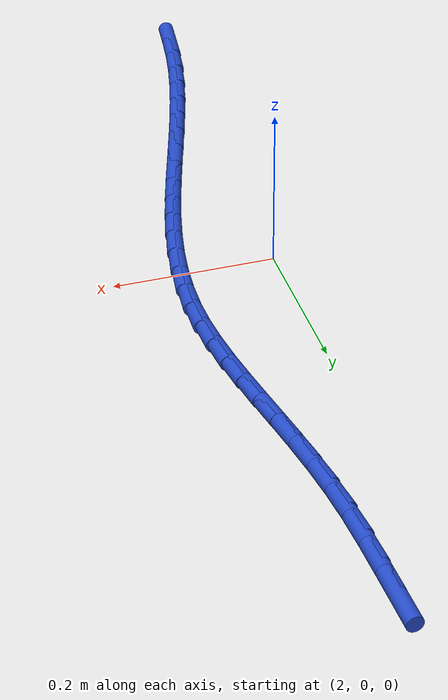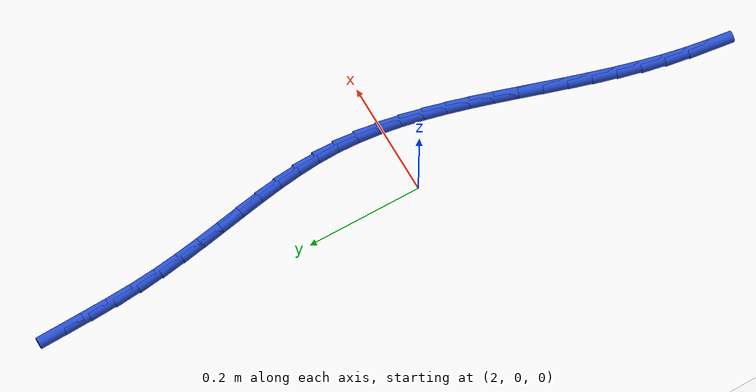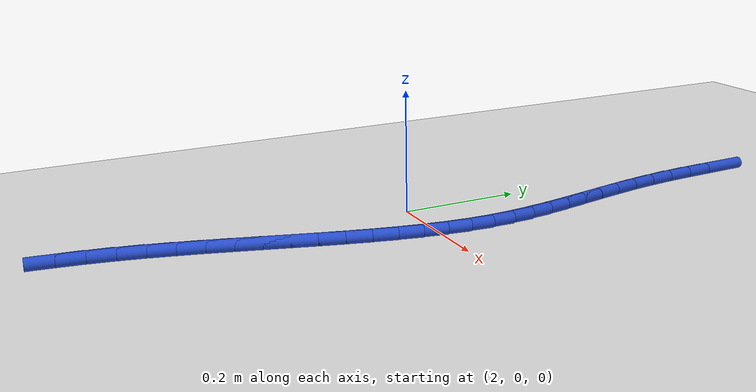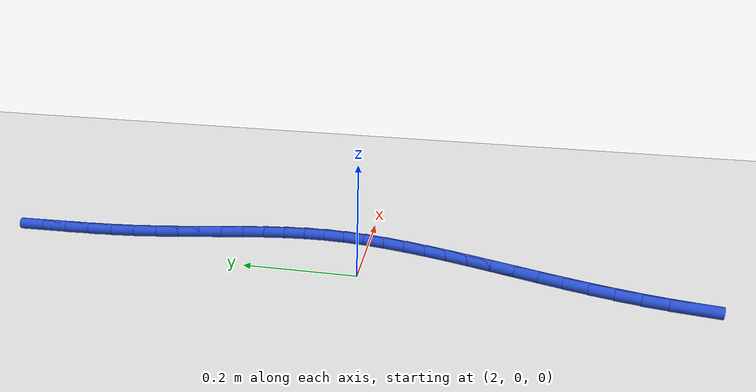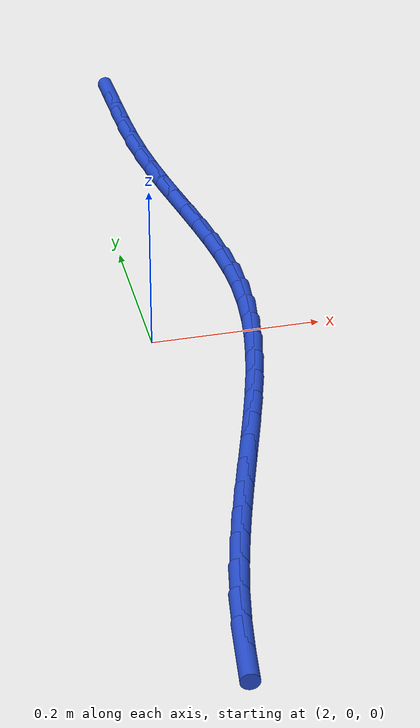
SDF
<sdf version="1.6">
 <world name="default">
  <model name="ground_plane">
   <static>1</static>
   <link name="link">
    <collision name="collision">
     <geometry><plane><normal>0 0 1</normal><size>100 100</size></plane></geometry>
     <surface><friction><ode><mu>100</mu><mu2>50</mu2></ode></friction></surface>
    </collision>
    <visual name="visual">
     <cast_shadows>0</cast_shadows>
     <geometry><plane><normal>0 0 1</normal><size>100 100</size></plane></geometry>
     <material>
      <script><uri>file://media/materials/scripts/gazebo.material</uri><name>Gazebo/WhiteGlow</name></script>
     </material>
    </visual>
   </link>
  </model>
  <model name="line">
   <link name="link_75">
    <pose>2.0658196708728847 0.612621576964853 0.01 0 1.57 -1.5425370507481455</pose>
    <collision name="collision">
     <geometry><cylinder><radius>0.01</radius><length>0.08</length></cylinder></geometry>
    </collision>
    <visual name="visual">
     <material>
      <script><name>Gazebo/Blue</name><uri>file://media/materials/scripts/gazebo.material</uri></script>
     </material>
     <geometry><cylinder><radius>0.01</radius><length>0.08</length></cylinder></geometry>
    </visual>
   </link>
   <link name="link_76">
    <pose>2.0670937337694575 0.5675488112464088 0.01 0 1.57 -1.5370149648665443</pose>
    <collision name="collision">
     <geometry><cylinder><radius>0.01</radius><length>0.08</length></cylinder></geometry>
    </collision>
    <visual name="visual">
     <material>
      <script><name>Gazebo/Blue</name><uri>file://media/materials/scripts/gazebo.material</uri></script>
     </material>
     <geometry><cylinder><radius>0.01</radius><length>0.08</length></cylinder></geometry>
    </visual>
   </link>
   <link name="link_77">
    <pose>2.068618910010215 0.5224175334499878 0.01 0 1.57 -1.516168102248437</pose>
    <collision name="collision">
     <geometry><cylinder><radius>0.01</radius><length>0.08</length></cylinder></geometry>
    </collision>
    <visual name="visual">
     <material>
      <script><name>Gazebo/Blue</name><uri>file://media/materials/scripts/gazebo.material</uri></script>
     </material>
     <geometry><cylinder><radius>0.01</radius><length>0.08</length></cylinder></geometry>
    </visual>
   </link>
   <link name="link_78">
    <pose>2.0710577040891653 0.47781847075410205 0.01 0 1.57 -1.479744158521406</pose>
    <collision name="collision">
     <geometry><cylinder><radius>0.01</radius><length>0.08</length></cylinder></geometry>
    </collision>
    <visual name="visual">
     <material>
      <script><name>Gazebo/Blue</name><uri>file://media/materials/scripts/gazebo.material</uri></script>
     </material>
     <geometry><cylinder><radius>0.01</radius><length>0.08</length></cylinder></geometry>
    </visual>
   </link>
   <link name="link_79">
    <pose>2.07502982569719 0.4343144152568177 0.01 0 1.57 -1.4411196240991653</pose>
    <collision name="collision">
     <geometry><cylinder><radius>0.01</radius><length>0.08</length></cylinder></geometry>
    </collision>
    <visual name="visual">
     <material>
      <script><name>Gazebo/Blue</name><uri>file://media/materials/scripts/gazebo.material</uri></script>
     </material>
     <geometry><cylinder><radius>0.01</radius><length>0.08</length></cylinder></geometry>
    </visual>
   </link>
   <link name="link_80">
    <pose>2.080539341135744 0.39206628671765337 0.01 0 1.57 -1.4119477316533582</pose>
    <collision name="collision">
     <geometry><cylinder><radius>0.01</radius><length>0.08</length></cylinder></geometry>
    </collision>
    <visual name="visual">
     <material>
      <script><name>Gazebo/Blue</name><uri>file://media/materials/scripts/gazebo.material</uri></script>
     </material>
     <geometry><cylinder><radius>0.01</radius><length>0.08</length></cylinder></geometry>
    </visual>
   </link>
   <link name="link_81">
    <pose>2.087128713516291 0.35093368507912615 0.01 0 1.57 -1.3934064803781783</pose>
    <collision name="collision">
     <geometry><cylinder><radius>0.01</radius><length>0.08</length></cylinder></geometry>
    </collision>
    <visual name="visual">
     <material>
      <script><name>Gazebo/Blue</name><uri>file://media/materials/scripts/gazebo.material</uri></script>
     </material>
     <geometry><cylinder><radius>0.01</radius><length>0.08</length></cylinder></geometry>
    </visual>
   </link>
   <link name="link_82">
    <pose>2.0943292222444954 0.31076890991785544 0.01 0 1.57 -1.3862881607513446</pose>
    <collision name="collision">
     <geometry><cylinder><radius>0.01</radius><length>0.08</length></cylinder></geometry>
    </collision>
    <visual name="visual">
     <material>
      <script><name>Gazebo/Blue</name><uri>file://media/materials/scripts/gazebo.material</uri></script>
     </material>
     <geometry><cylinder><radius>0.01</radius><length>0.08</length></cylinder></geometry>
    </visual>
   </link>
   <link name="link_83">
    <pose>2.101672146726018 0.27142426081046084 0.01 0 1.57 -1.391310648379787</pose>
    <collision name="collision">
     <geometry><cylinder><radius>0.01</radius><length>0.08</length></cylinder></geometry>
    </collision>
    <visual name="visual">
     <material>
      <script><name>Gazebo/Blue</name><uri>file://media/materials/scripts/gazebo.material</uri></script>
     </material>
     <geometry><cylinder><radius>0.01</radius><length>0.08</length></cylinder></geometry>
    </visual>
   </link>
   <link name="link_84">
    <pose>2.1086887663665226 0.23275203733356306 0.01 0 1.57 -1.4091266235786877</pose>
    <collision name="collision">
     <geometry><cylinder><radius>0.01</radius><length>0.08</length></cylinder></geometry>
    </collision>
    <visual name="visual">
     <material>
      <script><name>Gazebo/Blue</name><uri>file://media/materials/scripts/gazebo.material</uri></script>
     </material>
     <geometry><cylinder><radius>0.01</radius><length>0.08</length></cylinder></geometry>
    </visual>
   </link>
   <link name="link_85">
    <pose>2.1149103605716713 0.19460453906378122 0.01 0 1.57 -1.4402799689647814</pose>
    <collision name="collision">
     <geometry><cylinder><radius>0.01</radius><length>0.08</length></cylinder></geometry>
    </collision>
    <visual name="visual">
     <material>
      <script><name>Gazebo/Blue</name><uri>file://media/materials/scripts/gazebo.material</uri></script>
     </material>
     <geometry><cylinder><radius>0.01</radius><length>0.08</length></cylinder></geometry>
    </visual>
   </link>
   <link name="link_86">
    <pose>2.119868208747126 0.15683406557773585 0.01 0 1.57 -1.4850908943707237</pose>
    <collision name="collision">
     <geometry><cylinder><radius>0.01</radius><length>0.08</length></cylinder></geometry>
    </collision>
    <visual name="visual">
     <material>
      <script><name>Gazebo/Blue</name><uri>file://media/materials/scripts/gazebo.material</uri></script>
     </material>
     <geometry><cylinder><radius>0.01</radius><length>0.08</length></cylinder></geometry>
    </visual>
   </link>
   <link name="link_87">
    <pose>2.1230935902985504 0.11929291645204661 0.01 0 1.57 -1.543461777566761</pose>
    <collision name="collision">
     <geometry><cylinder><radius>0.01</radius><length>0.08</length></cylinder></geometry>
    </collision>
    <visual name="visual">
     <material>
      <script><name>Gazebo/Blue</name><uri>file://media/materials/scripts/gazebo.material</uri></script>
     </material>
     <geometry><cylinder><radius>0.01</radius><length>0.08</length></cylinder></geometry>
    </visual>
   </link>
   <link name="link_88">
    <pose>2.124117784631606 0.08183339126333301 0.01 0 1.57 1.5301817495891665</pose>
    <collision name="collision">
     <geometry><cylinder><radius>0.01</radius><length>0.08</length></cylinder></geometry>
    </collision>
    <visual name="visual">
     <material>
      <script><name>Gazebo/Blue</name><uri>file://media/materials/scripts/gazebo.material</uri></script>
     </material>
     <geometry><cylinder><radius>0.01</radius><length>0.08</length></cylinder></geometry>
    </visual>
   </link>
   <link name="link_89">
    <pose>2.122593690683846 0.044328240639109305 0.01 0 1.57 1.467159769155734</pose>
    <collision name="collision">
     <geometry><cylinder><radius>0.01</radius><length>0.08</length></cylinder></geometry>
    </collision>
    <visual name="visual">
     <material>
      <script><name>Gazebo/Blue</name><uri>file://media/materials/scripts/gazebo.material</uri></script>
     </material>
     <geometry><cylinder><radius>0.01</radius><length>0.08</length></cylinder></geometry>
    </visual>
   </link>
   <link name="link_90">
    <pose>2.1186837411773807 0.006735896356931243 0.01 0 1.57 1.4129645011971836</pose>
    <collision name="collision">
     <geometry><cylinder><radius>0.01</radius><length>0.08</length></cylinder></geometry>
    </collision>
    <visual name="visual">
     <material>
      <script><name>Gazebo/Blue</name><uri>file://media/materials/scripts/gazebo.material</uri></script>
     </material>
     <geometry><cylinder><radius>0.01</radius><length>0.08</length></cylinder></geometry>
    </visual>
   </link>
   <link name="link_91">
    <pose>2.11268378676026 -0.03096277478430328 0.01 0 1.57 1.3675789740026905</pose>
    <collision name="collision">
     <geometry><cylinder><radius>0.01</radius><length>0.08</length></cylinder></geometry>
    </collision>
    <visual name="visual">
     <material>
      <script><name>Gazebo/Blue</name><uri>file://media/materials/scripts/gazebo.material</uri></script>
     </material>
     <geometry><cylinder><radius>0.01</radius><length>0.08</length></cylinder></geometry>
    </visual>
   </link>
   <link name="link_92">
    <pose>2.1048896785489 -0.06878690590693878 0.01 0 1.57 1.3307757046805635</pose>
    <collision name="collision">
     <geometry><cylinder><radius>0.01</radius><length>0.08</length></cylinder></geometry>
    </collision>
    <visual name="visual">
     <material>
      <script><name>Gazebo/Blue</name><uri>file://media/materials/scripts/gazebo.material</uri></script>
     </material>
     <geometry><cylinder><radius>0.01</radius><length>0.08</length></cylinder></geometry>
    </visual>
   </link>
   <link name="link_93">
    <pose>2.0955972676597177 -0.10675563013331746 0.01 0 1.57 1.3022243899774284</pose>
    <collision name="collision">
     <geometry><cylinder><radius>0.01</radius><length>0.08</length></cylinder></geometry>
    </collision>
    <visual name="visual">
     <material>
      <script><name>Gazebo/Blue</name><uri>file://media/materials/scripts/gazebo.material</uri></script>
     </material>
     <geometry><cylinder><radius>0.01</radius><length>0.08</length></cylinder></geometry>
    </visual>
   </link>
   <link name="link_94">
    <pose>2.0851024052091263 -0.14488808058578379 0.01 0 1.57 1.2815709500604193</pose>
    <collision name="collision">
     <geometry><cylinder><radius>0.01</radius><length>0.08</length></cylinder></geometry>
    </collision>
    <visual name="visual">
     <material>
      <script><name>Gazebo/Blue</name><uri>file://media/materials/scripts/gazebo.material</uri></script>
     </material>
     <geometry><cylinder><radius>0.01</radius><length>0.08</length></cylinder></geometry>
    </visual>
   </link>
   <link name="link_95">
    <pose>2.0737009423135437 -0.1832033903866816 0.01 0 1.57 1.2684897429278303</pose>
    <collision name="collision">
     <geometry><cylinder><radius>0.01</radius><length>0.08</length></cylinder></geometry>
    </collision>
    <visual name="visual">
     <material>
      <script><name>Gazebo/Blue</name><uri>file://media/materials/scripts/gazebo.material</uri></script>
     </material>
     <geometry><cylinder><radius>0.01</radius><length>0.08</length></cylinder></geometry>
    </visual>
   </link>
   <link name="link_96">
    <pose>2.0616887300893842 -0.2217206926583545 0.01 0 1.57 1.2627143145330293</pose>
    <collision name="collision">
     <geometry><cylinder><radius>0.01</radius><length>0.08</length></cylinder></geometry>
    </collision>
    <visual name="visual">
     <material>
      <script><name>Gazebo/Blue</name><uri>file://media/materials/scripts/gazebo.material</uri></script>
     </material>
     <geometry><cylinder><radius>0.01</radius><length>0.08</length></cylinder></geometry>
    </visual>
   </link>
   <link name="link_97">
    <pose>2.0493616196530646 -0.26045912052314635 0.01 0 1.57 1.264052231765973</pose>
    <collision name="collision">
     <geometry><cylinder><radius>0.01</radius><length>0.08</length></cylinder></geometry>
    </collision>
    <visual name="visual">
     <material>
      <script><name>Gazebo/Blue</name><uri>file://media/materials/scripts/gazebo.material</uri></script>
     </material>
     <geometry><cylinder><radius>0.01</radius><length>0.08</length></cylinder></geometry>
    </visual>
   </link>
   <link name="link_98">
    <pose>2.037015462121 -0.2994378071034016 0.01 0 1.57 1.2723882270996512</pose>
    <collision name="collision">
     <geometry><cylinder><radius>0.01</radius><length>0.08</length></cylinder></geometry>
    </collision>
    <visual name="visual">
     <material>
      <script><name>Gazebo/Blue</name><uri>file://media/materials/scripts/gazebo.material</uri></script>
     </material>
     <geometry><cylinder><radius>0.01</radius><length>0.08</length></cylinder></geometry>
    </visual>
   </link>
   <link name="link_99">
    <pose>2.0249461086096057 -0.33867588552146244 0.01 0 1.57 1.2876781619999165</pose>
    <collision name="collision">
     <geometry><cylinder><radius>0.01</radius><length>0.08</length></cylinder></geometry>
    </collision>
    <visual name="visual">
     <material>
      <script><name>Gazebo/Blue</name><uri>file://media/materials/scripts/gazebo.material</uri></script>
     </material>
     <geometry><cylinder><radius>0.01</radius><length>0.08</length></cylinder></geometry>
    </visual>
   </link>
   <link name="link_100">
    <pose>2.013449410235298 -0.3781924888996733 0.01 0 1.57 1.3099347056484385</pose>
    <collision name="collision">
     <geometry><cylinder><radius>0.01</radius><length>0.08</length></cylinder></geometry>
    </collision>
    <visual name="visual">
     <material>
      <script><name>Gazebo/Blue</name><uri>file://media/materials/scripts/gazebo.material</uri></script>
     </material>
     <geometry><cylinder><radius>0.01</radius><length>0.08</length></cylinder></geometry>
    </visual>
   </link>
   <link name="link_101">
    <pose>2.0028212181144927 -0.418006750360378 0.01 0 1.57 1.3392043563392253</pose>
    <collision name="collision">
     <geometry><cylinder><radius>0.01</radius><length>0.08</length></cylinder></geometry>
    </collision>
    <visual name="visual">
     <material>
      <script><name>Gazebo/Blue</name><uri>file://media/materials/scripts/gazebo.material</uri></script>
     </material>
     <geometry><cylinder><radius>0.01</radius><length>0.08</length></cylinder></geometry>
    </visual>
   </link>
   <link name="link_102">
    <pose>1.9933573833636056 -0.45813780302592033 0.01 0 1.57 1.3755342398279269</pose>
    <collision name="collision">
     <geometry><cylinder><radius>0.01</radius><length>0.08</length></cylinder></geometry>
    </collision>
    <visual name="visual">
     <material>
      <script><name>Gazebo/Blue</name><uri>file://media/materials/scripts/gazebo.material</uri></script>
     </material>
     <geometry><cylinder><radius>0.01</radius><length>0.08</length></cylinder></geometry>
    </visual>
   </link>
   <link name="link_103">
    <pose>1.985353739359346 -0.49860477522472757 0.01 0 1.57 1.4143780131470998</pose>
    <collision name="collision">
     <geometry><cylinder><radius>0.01</radius><length>0.08</length></cylinder></geometry>
    </collision>
    <visual name="visual">
     <material>
      <script><name>Gazebo/Blue</name><uri>file://media/materials/scripts/gazebo.material</uri></script>
     </material>
     <geometry><cylinder><radius>0.01</radius><length>0.08</length></cylinder></geometry>
    </visual>
   </link>
   <link name="link_104">
    <pose>1.97892361524674 -0.5393774759684584 0.01 0 1.57 1.440049599106873</pose>
    <collision name="collision">
     <geometry><cylinder><radius>0.01</radius><length>0.08</length></cylinder></geometry>
    </collision>
    <visual name="visual">
     <material>
      <script><name>Gazebo/Blue</name><uri>file://media/materials/scripts/gazebo.material</uri></script>
     </material>
     <geometry><cylinder><radius>0.01</radius><length>0.08</length></cylinder></geometry>
    </visual>
   </link>
  </model>
 </world>
</sdf>
